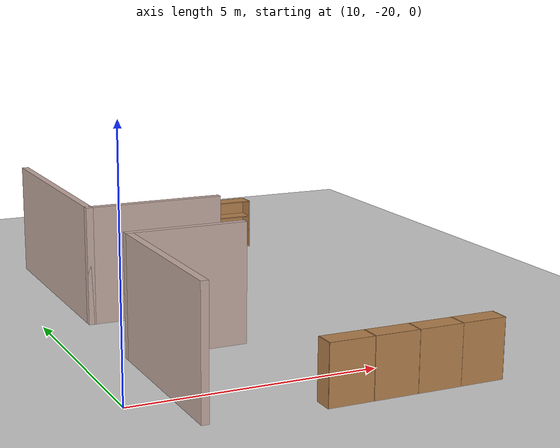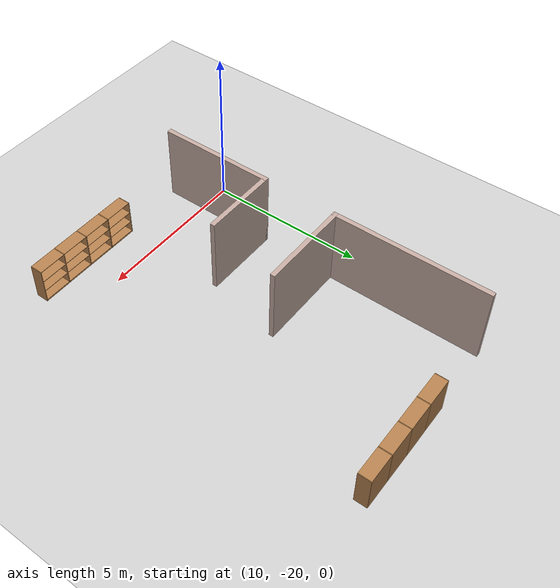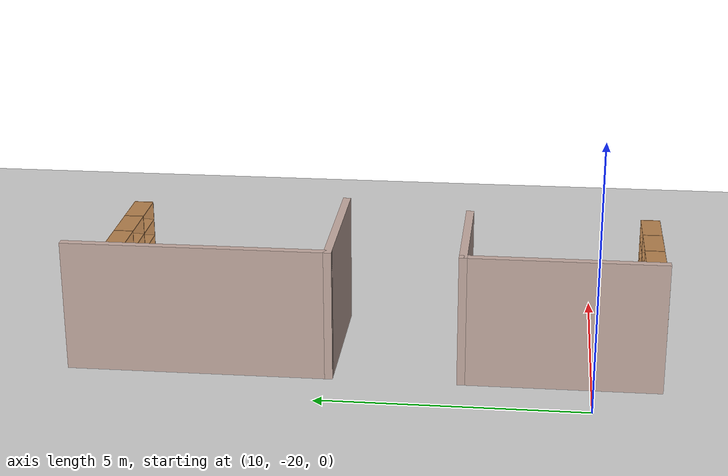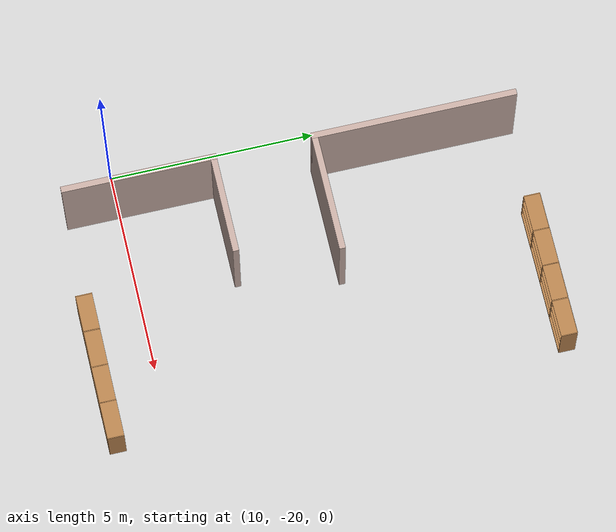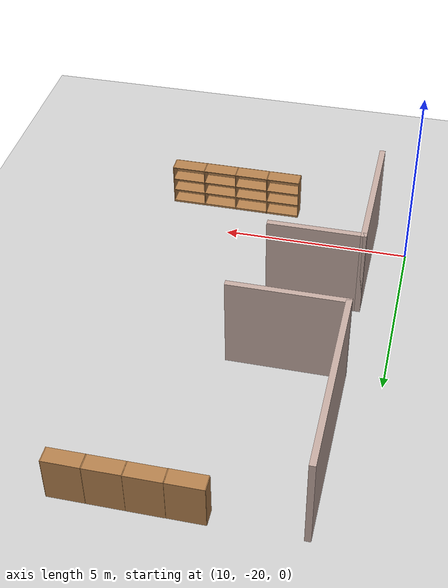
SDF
<sdf version="1.6">
 <world name="default">
  <model name="ground_plane">
   <static>1</static>
   <link name="link">
    <collision name="collision">
     <geometry><plane><normal>0 0 1</normal><size>100 100</size></plane></geometry>
     <surface><friction><ode><mu>100</mu><mu2>50</mu2></ode></friction></surface>
    </collision>
    <visual name="visual">
     <cast_shadows>0</cast_shadows>
     <geometry><plane><normal>0 0 1</normal><size>100 100</size></plane></geometry>
     <material>
      <script><uri>file://media/materials/scripts/gazebo.material</uri><name>Gazebo/Grey</name></script>
     </material>
    </visual>
   </link>
  </model>
  <model name="floor">
   <link name="Wall_120">
    <pose>9.72814 -11.4737 0 0 -0 1.5708</pose>
    <visual name="Wall_120_Visual">
     <pose>0 0 1.25 0 -0 0</pose>
     <geometry><box><size>5 0.15 2.5</size></box></geometry>
     <material>
      <script><uri>file://media/materials/scripts/gazebo.material</uri><name>Gazebo/Grey</name></script>
      <ambient>0.760784 0.662745 0.627451 1</ambient>
     </material>
     <meta><layer>0</layer></meta>
    </visual>
    <collision name="Wall_120_Collision">
     <pose>0 0 1.25 0 -0 0</pose>
     <geometry><box><size>5 0.15 2.5</size></box></geometry>
     <surface>
      <friction>
       <ode><mu>1</mu><mu2>1</mu2><fdir1>0 0 0</fdir1><slip1>0</slip1><slip2>0</slip2></ode>
       <torsional>
        <coefficient>1</coefficient>
        <patch_radius>0</patch_radius>
        <surface_radius>0</surface_radius>
        <use_patch_radius>1</use_patch_radius>
        <ode><slip>0</slip></ode>
       </torsional>
      </friction>
      <bounce><restitution_coefficient>0</restitution_coefficient><threshold>1e+06</threshold></bounce>
      <contact>
       <collide_without_contact>0</collide_without_contact>
       <collide_without_contact_bitmask>1</collide_without_contact_bitmask>
       <collide_bitmask>1</collide_bitmask>
       <ode>
        <soft_cfm>0</soft_cfm>
        <soft_erp>0.2</soft_erp>
        <kp>1e+13</kp>
        <kd>1</kd>
        <max_vel>0.01</max_vel>
        <min_depth>0</min_depth>
       </ode>
       <bullet>
        <split_impulse>1</split_impulse>
        <split_impulse_penetration_threshold>-0.01</split_impulse_penetration_threshold>
        <soft_cfm>0</soft_cfm>
        <soft_erp>0.2</soft_erp>
        <kp>1e+13</kp>
        <kd>1</kd>
       </bullet>
      </contact>
     </surface>
    </collision>
   </link>
   <link name="Wall_122">
    <pose>11.1531 -13.8987 0 0 -0 0</pose>
    <visual name="Wall_122_Visual">
     <pose>0 0 1.25 0 -0 0</pose>
     <geometry><box><size>3 0.15 2.5</size></box></geometry>
     <material>
      <script><uri>file://media/materials/scripts/gazebo.material</uri><name>Gazebo/Grey</name></script>
      <ambient>0.760784 0.662745 0.627451 1</ambient>
     </material>
     <meta><layer>0</layer></meta>
    </visual>
    <collision name="Wall_122_Collision">
     <pose>0 0 1.25 0 -0 0</pose>
     <geometry><box><size>3 0.15 2.5</size></box></geometry>
     <surface>
      <friction>
       <ode><mu>1</mu><mu2>1</mu2><fdir1>0 0 0</fdir1><slip1>0</slip1><slip2>0</slip2></ode>
       <torsional>
        <coefficient>1</coefficient>
        <patch_radius>0</patch_radius>
        <surface_radius>0</surface_radius>
        <use_patch_radius>1</use_patch_radius>
        <ode><slip>0</slip></ode>
       </torsional>
      </friction>
      <bounce><restitution_coefficient>0</restitution_coefficient><threshold>1e+06</threshold></bounce>
      <contact>
       <collide_without_contact>0</collide_without_contact>
       <collide_without_contact_bitmask>1</collide_without_contact_bitmask>
       <collide_bitmask>1</collide_bitmask>
       <ode>
        <soft_cfm>0</soft_cfm>
        <soft_erp>0.2</soft_erp>
        <kp>1e+13</kp>
        <kd>1</kd>
        <max_vel>0.01</max_vel>
        <min_depth>0</min_depth>
       </ode>
       <bullet>
        <split_impulse>1</split_impulse>
        <split_impulse_penetration_threshold>-0.01</split_impulse_penetration_threshold>
        <soft_cfm>0</soft_cfm>
        <soft_erp>0.2</soft_erp>
        <kp>1e+13</kp>
        <kd>1</kd>
       </bullet>
      </contact>
     </surface>
    </collision>
   </link>
   <link name="Wall_130">
    <pose>9.72225 -18.1406 0 0 0 -1.5708</pose>
    <visual name="Wall_130_Visual">
     <pose>0 0 1.25 0 -0 0</pose>
     <geometry><box><size>3.75 0.15 2.5</size></box></geometry>
     <material>
      <script><uri>file://media/materials/scripts/gazebo.material</uri><name>Gazebo/Grey</name></script>
      <ambient>0.760784 0.662745 0.627451 1</ambient>
     </material>
     <meta><layer>0</layer></meta>
    </visual>
    <collision name="Wall_130_Collision">
     <pose>0 0 1.25 0 -0 0</pose>
     <geometry><box><size>3.75 0.15 2.5</size></box></geometry>
     <surface>
      <friction>
       <ode><mu>1</mu><mu2>1</mu2><fdir1>0 0 0</fdir1><slip1>0</slip1><slip2>0</slip2></ode>
       <torsional>
        <coefficient>1</coefficient>
        <patch_radius>0</patch_radius>
        <surface_radius>0</surface_radius>
        <use_patch_radius>1</use_patch_radius>
        <ode><slip>0</slip></ode>
       </torsional>
      </friction>
      <bounce><restitution_coefficient>0</restitution_coefficient><threshold>1e+06</threshold></bounce>
      <contact>
       <collide_without_contact>0</collide_without_contact>
       <collide_without_contact_bitmask>1</collide_without_contact_bitmask>
       <collide_bitmask>1</collide_bitmask>
       <ode>
        <soft_cfm>0</soft_cfm>
        <soft_erp>0.2</soft_erp>
        <kp>1e+13</kp>
        <kd>1</kd>
        <max_vel>0.01</max_vel>
        <min_depth>0</min_depth>
       </ode>
       <bullet>
        <split_impulse>1</split_impulse>
        <split_impulse_penetration_threshold>-0.01</split_impulse_penetration_threshold>
        <soft_cfm>0</soft_cfm>
        <soft_erp>0.2</soft_erp>
        <kp>1e+13</kp>
        <kd>1</kd>
       </bullet>
      </contact>
     </surface>
    </collision>
   </link>
   <link name="Wall_132">
    <pose>10.8972 -16.3406 0 0 -0 0</pose>
    <visual name="Wall_132_Visual">
     <pose>0 0 1.25 0 -0 0</pose>
     <geometry><box><size>2.5 0.15 2.5</size></box></geometry>
     <material>
      <script><uri>file://media/materials/scripts/gazebo.material</uri><name>Gazebo/Grey</name></script>
      <ambient>0.760784 0.662745 0.627451 1</ambient>
     </material>
     <meta><layer>0</layer></meta>
    </visual>
    <collision name="Wall_132_Collision">
     <pose>0 0 1.25 0 -0 0</pose>
     <geometry><box><size>2.5 0.15 2.5</size></box></geometry>
     <surface>
      <friction>
       <ode><mu>1</mu><mu2>1</mu2><fdir1>0 0 0</fdir1><slip1>0</slip1><slip2>0</slip2></ode>
       <torsional>
        <coefficient>1</coefficient>
        <patch_radius>0</patch_radius>
        <surface_radius>0</surface_radius>
        <use_patch_radius>1</use_patch_radius>
        <ode><slip>0</slip></ode>
       </torsional>
      </friction>
      <bounce><restitution_coefficient>0</restitution_coefficient><threshold>1e+06</threshold></bounce>
      <contact>
       <collide_without_contact>0</collide_without_contact>
       <collide_without_contact_bitmask>1</collide_without_contact_bitmask>
       <collide_bitmask>1</collide_bitmask>
       <ode>
        <soft_cfm>0</soft_cfm>
        <soft_erp>0.2</soft_erp>
        <kp>1e+13</kp>
        <kd>1</kd>
        <max_vel>0.01</max_vel>
        <min_depth>0</min_depth>
       </ode>
       <bullet>
        <split_impulse>1</split_impulse>
        <split_impulse_penetration_threshold>-0.01</split_impulse_penetration_threshold>
        <soft_cfm>0</soft_cfm>
        <soft_erp>0.2</soft_erp>
        <kp>1e+13</kp>
        <kd>1</kd>
       </bullet>
      </contact>
     </surface>
    </collision>
   </link>
   <static>1</static>
   <pose>1.26361 -1.27025 0 0 -0 0</pose>
  </model>
  <model name="Bookshelf-4_clone_15">
   <model name="bookshelf">
    <static>1</static>
    <link name="link">
     <inertial><mass>1</mass></inertial>
     <collision name="back">
      <pose>0 0.005 0.6 0 -0 0</pose>
      <geometry><box><size>0.9 0.01 1.2</size></box></geometry>
     </collision>
     <visual name="visual1">
      <pose>0 0.005 0.6 0 -0 0</pose>
      <geometry><box><size>0.9 0.01 1.2</size></box></geometry>
      <material>
       <script><uri>file://media/materials/scripts/gazebo.material</uri><name>Gazebo/Wood</name></script>
      </material>
     </visual>
     <collision name="left_side">
      <pose>0.45 -0.195 0.6 0 -0 0</pose>
      <geometry><box><size>0.02 0.4 1.2</size></box></geometry>
     </collision>
     <visual name="visual2">
      <pose>0.45 -0.195 0.6 0 -0 0</pose>
      <geometry><box><size>0.02 0.4 1.2</size></box></geometry>
      <material>
       <script><uri>file://media/materials/scripts/gazebo.material</uri><name>Gazebo/Wood</name></script>
      </material>
     </visual>
     <collision name="right_side">
      <pose>-0.45 -0.195 0.6 0 -0 0</pose>
      <geometry><box><size>0.02 0.4 1.2</size></box></geometry>
     </collision>
     <visual name="visual3">
      <pose>-0.45 -0.195 0.6 0 -0 0</pose>
      <geometry><box><size>0.02 0.4 1.2</size></box></geometry>
      <material>
       <script><uri>file://media/materials/scripts/gazebo.material</uri><name>Gazebo/Wood</name></script>
      </material>
     </visual>
     <collision name="bottom">
      <pose>0 -0.195 0.03 0 -0 0</pose>
      <geometry><box><size>0.88 0.4 0.06</size></box></geometry>
     </collision>
     <visual name="visual4">
      <pose>0 -0.195 0.03 0 -0 0</pose>
      <geometry><box><size>0.88 0.4 0.06</size></box></geometry>
      <material>
       <script><uri>file://media/materials/scripts/gazebo.material</uri><name>Gazebo/Wood</name></script>
      </material>
     </visual>
     <collision name="top">
      <pose>0 -0.195 1.19 0 -0 0</pose>
      <geometry><box><size>0.88 0.4 0.02</size></box></geometry>
     </collision>
     <visual name="visual5">
      <pose>0 -0.195 1.19 0 -0 0</pose>
      <geometry><box><size>0.88 0.4 0.02</size></box></geometry>
      <material>
       <script><uri>file://media/materials/scripts/gazebo.material</uri><name>Gazebo/Wood</name></script>
      </material>
     </visual>
     <collision name="low_shelf">
      <pose>0 -0.195 0.43 0 -0 0</pose>
      <geometry><box><size>0.88 0.4 0.02</size></box></geometry>
     </collision>
     <visual name="visual6">
      <pose>0 -0.195 0.43 0 -0 0</pose>
      <geometry><box><size>0.88 0.4 0.02</size></box></geometry>
      <material>
       <script><uri>file://media/materials/scripts/gazebo.material</uri><name>Gazebo/Wood</name></script>
      </material>
     </visual>
     <collision name="high_shelf">
      <pose>0 -0.195 0.8 0 -0 0</pose>
      <geometry><box><size>0.88 0.4 0.02</size></box></geometry>
     </collision>
     <visual name="visual7">
      <pose>0 -0.195 0.8 0 -0 0</pose>
      <geometry><box><size>0.88 0.4 0.02</size></box></geometry>
      <material>
       <script><uri>file://media/materials/scripts/gazebo.material</uri><name>Gazebo/Wood</name></script>
      </material>
     </visual>
    </link>
    <pose>-1.35671 -0.002097 0 0 -0 0</pose>
   </model>
   <model name="bookshelf_0">
    <static>1</static>
    <link name="link">
     <inertial><mass>1</mass></inertial>
     <collision name="back">
      <pose>0 0.005 0.6 0 -0 0</pose>
      <geometry><box><size>0.9 0.01 1.2</size></box></geometry>
     </collision>
     <visual name="visual1">
      <pose>0 0.005 0.6 0 -0 0</pose>
      <geometry><box><size>0.9 0.01 1.2</size></box></geometry>
      <material>
       <script><uri>file://media/materials/scripts/gazebo.material</uri><name>Gazebo/Wood</name></script>
      </material>
     </visual>
     <collision name="left_side">
      <pose>0.45 -0.195 0.6 0 -0 0</pose>
      <geometry><box><size>0.02 0.4 1.2</size></box></geometry>
     </collision>
     <visual name="visual2">
      <pose>0.45 -0.195 0.6 0 -0 0</pose>
      <geometry><box><size>0.02 0.4 1.2</size></box></geometry>
      <material>
       <script><uri>file://media/materials/scripts/gazebo.material</uri><name>Gazebo/Wood</name></script>
      </material>
     </visual>
     <collision name="right_side">
      <pose>-0.45 -0.195 0.6 0 -0 0</pose>
      <geometry><box><size>0.02 0.4 1.2</size></box></geometry>
     </collision>
     <visual name="visual3">
      <pose>-0.45 -0.195 0.6 0 -0 0</pose>
      <geometry><box><size>0.02 0.4 1.2</size></box></geometry>
      <material>
       <script><uri>file://media/materials/scripts/gazebo.material</uri><name>Gazebo/Wood</name></script>
      </material>
     </visual>
     <collision name="bottom">
      <pose>0 -0.195 0.03 0 -0 0</pose>
      <geometry><box><size>0.88 0.4 0.06</size></box></geometry>
     </collision>
     <visual name="visual4">
      <pose>0 -0.195 0.03 0 -0 0</pose>
      <geometry><box><size>0.88 0.4 0.06</size></box></geometry>
      <material>
       <script><uri>file://media/materials/scripts/gazebo.material</uri><name>Gazebo/Wood</name></script>
      </material>
     </visual>
     <collision name="top">
      <pose>0 -0.195 1.19 0 -0 0</pose>
      <geometry><box><size>0.88 0.4 0.02</size></box></geometry>
     </collision>
     <visual name="visual5">
      <pose>0 -0.195 1.19 0 -0 0</pose>
      <geometry><box><size>0.88 0.4 0.02</size></box></geometry>
      <material>
       <script><uri>file://media/materials/scripts/gazebo.material</uri><name>Gazebo/Wood</name></script>
      </material>
     </visual>
     <collision name="low_shelf">
      <pose>0 -0.195 0.43 0 -0 0</pose>
      <geometry><box><size>0.88 0.4 0.02</size></box></geometry>
     </collision>
     <visual name="visual6">
      <pose>0 -0.195 0.43 0 -0 0</pose>
      <geometry><box><size>0.88 0.4 0.02</size></box></geometry>
      <material>
       <script><uri>file://media/materials/scripts/gazebo.material</uri><name>Gazebo/Wood</name></script>
      </material>
     </visual>
     <collision name="high_shelf">
      <pose>0 -0.195 0.8 0 -0 0</pose>
      <geometry><box><size>0.88 0.4 0.02</size></box></geometry>
     </collision>
     <visual name="visual7">
      <pose>0 -0.195 0.8 0 -0 0</pose>
      <geometry><box><size>0.88 0.4 0.02</size></box></geometry>
      <material>
       <script><uri>file://media/materials/scripts/gazebo.material</uri><name>Gazebo/Wood</name></script>
      </material>
     </visual>
    </link>
    <pose>-0.452974 0.001386 0 0 -0 0</pose>
   </model>
   <model name="bookshelf_1">
    <static>1</static>
    <link name="link">
     <inertial><mass>1</mass></inertial>
     <collision name="back">
      <pose>0 0.005 0.6 0 -0 0</pose>
      <geometry><box><size>0.9 0.01 1.2</size></box></geometry>
     </collision>
     <visual name="visual1">
      <pose>0 0.005 0.6 0 -0 0</pose>
      <geometry><box><size>0.9 0.01 1.2</size></box></geometry>
      <material>
       <script><uri>file://media/materials/scripts/gazebo.material</uri><name>Gazebo/Wood</name></script>
      </material>
     </visual>
     <collision name="left_side">
      <pose>0.45 -0.195 0.6 0 -0 0</pose>
      <geometry><box><size>0.02 0.4 1.2</size></box></geometry>
     </collision>
     <visual name="visual2">
      <pose>0.45 -0.195 0.6 0 -0 0</pose>
      <geometry><box><size>0.02 0.4 1.2</size></box></geometry>
      <material>
       <script><uri>file://media/materials/scripts/gazebo.material</uri><name>Gazebo/Wood</name></script>
      </material>
     </visual>
     <collision name="right_side">
      <pose>-0.45 -0.195 0.6 0 -0 0</pose>
      <geometry><box><size>0.02 0.4 1.2</size></box></geometry>
     </collision>
     <visual name="visual3">
      <pose>-0.45 -0.195 0.6 0 -0 0</pose>
      <geometry><box><size>0.02 0.4 1.2</size></box></geometry>
      <material>
       <script><uri>file://media/materials/scripts/gazebo.material</uri><name>Gazebo/Wood</name></script>
      </material>
     </visual>
     <collision name="bottom">
      <pose>0 -0.195 0.03 0 -0 0</pose>
      <geometry><box><size>0.88 0.4 0.06</size></box></geometry>
     </collision>
     <visual name="visual4">
      <pose>0 -0.195 0.03 0 -0 0</pose>
      <geometry><box><size>0.88 0.4 0.06</size></box></geometry>
      <material>
       <script><uri>file://media/materials/scripts/gazebo.material</uri><name>Gazebo/Wood</name></script>
      </material>
     </visual>
     <collision name="top">
      <pose>0 -0.195 1.19 0 -0 0</pose>
      <geometry><box><size>0.88 0.4 0.02</size></box></geometry>
     </collision>
     <visual name="visual5">
      <pose>0 -0.195 1.19 0 -0 0</pose>
      <geometry><box><size>0.88 0.4 0.02</size></box></geometry>
      <material>
       <script><uri>file://media/materials/scripts/gazebo.material</uri><name>Gazebo/Wood</name></script>
      </material>
     </visual>
     <collision name="low_shelf">
      <pose>0 -0.195 0.43 0 -0 0</pose>
      <geometry><box><size>0.88 0.4 0.02</size></box></geometry>
     </collision>
     <visual name="visual6">
      <pose>0 -0.195 0.43 0 -0 0</pose>
      <geometry><box><size>0.88 0.4 0.02</size></box></geometry>
      <material>
       <script><uri>file://media/materials/scripts/gazebo.material</uri><name>Gazebo/Wood</name></script>
      </material>
     </visual>
     <collision name="high_shelf">
      <pose>0 -0.195 0.8 0 -0 0</pose>
      <geometry><box><size>0.88 0.4 0.02</size></box></geometry>
     </collision>
     <visual name="visual7">
      <pose>0 -0.195 0.8 0 -0 0</pose>
      <geometry><box><size>0.88 0.4 0.02</size></box></geometry>
      <material>
       <script><uri>file://media/materials/scripts/gazebo.material</uri><name>Gazebo/Wood</name></script>
      </material>
     </visual>
    </link>
    <pose>0.450456 0.000733 0 0 -0 0</pose>
   </model>
   <model name="bookshelf_2">
    <static>1</static>
    <link name="link">
     <inertial><mass>1</mass></inertial>
     <collision name="back">
      <pose>0 0.005 0.6 0 -0 0</pose>
      <geometry><box><size>0.9 0.01 1.2</size></box></geometry>
     </collision>
     <visual name="visual1">
      <pose>0 0.005 0.6 0 -0 0</pose>
      <geometry><box><size>0.9 0.01 1.2</size></box></geometry>
      <material>
       <script><uri>file://media/materials/scripts/gazebo.material</uri><name>Gazebo/Wood</name></script>
      </material>
     </visual>
     <collision name="left_side">
      <pose>0.45 -0.195 0.6 0 -0 0</pose>
      <geometry><box><size>0.02 0.4 1.2</size></box></geometry>
     </collision>
     <visual name="visual2">
      <pose>0.45 -0.195 0.6 0 -0 0</pose>
      <geometry><box><size>0.02 0.4 1.2</size></box></geometry>
      <material>
       <script><uri>file://media/materials/scripts/gazebo.material</uri><name>Gazebo/Wood</name></script>
      </material>
     </visual>
     <collision name="right_side">
      <pose>-0.45 -0.195 0.6 0 -0 0</pose>
      <geometry><box><size>0.02 0.4 1.2</size></box></geometry>
     </collision>
     <visual name="visual3">
      <pose>-0.45 -0.195 0.6 0 -0 0</pose>
      <geometry><box><size>0.02 0.4 1.2</size></box></geometry>
      <material>
       <script><uri>file://media/materials/scripts/gazebo.material</uri><name>Gazebo/Wood</name></script>
      </material>
     </visual>
     <collision name="bottom">
      <pose>0 -0.195 0.03 0 -0 0</pose>
      <geometry><box><size>0.88 0.4 0.06</size></box></geometry>
     </collision>
     <visual name="visual4">
      <pose>0 -0.195 0.03 0 -0 0</pose>
      <geometry><box><size>0.88 0.4 0.06</size></box></geometry>
      <material>
       <script><uri>file://media/materials/scripts/gazebo.material</uri><name>Gazebo/Wood</name></script>
      </material>
     </visual>
     <collision name="top">
      <pose>0 -0.195 1.19 0 -0 0</pose>
      <geometry><box><size>0.88 0.4 0.02</size></box></geometry>
     </collision>
     <visual name="visual5">
      <pose>0 -0.195 1.19 0 -0 0</pose>
      <geometry><box><size>0.88 0.4 0.02</size></box></geometry>
      <material>
       <script><uri>file://media/materials/scripts/gazebo.material</uri><name>Gazebo/Wood</name></script>
      </material>
     </visual>
     <collision name="low_shelf">
      <pose>0 -0.195 0.43 0 -0 0</pose>
      <geometry><box><size>0.88 0.4 0.02</size></box></geometry>
     </collision>
     <visual name="visual6">
      <pose>0 -0.195 0.43 0 -0 0</pose>
      <geometry><box><size>0.88 0.4 0.02</size></box></geometry>
      <material>
       <script><uri>file://media/materials/scripts/gazebo.material</uri><name>Gazebo/Wood</name></script>
      </material>
     </visual>
     <collision name="high_shelf">
      <pose>0 -0.195 0.8 0 -0 0</pose>
      <geometry><box><size>0.88 0.4 0.02</size></box></geometry>
     </collision>
     <visual name="visual7">
      <pose>0 -0.195 0.8 0 -0 0</pose>
      <geometry><box><size>0.88 0.4 0.02</size></box></geometry>
      <material>
       <script><uri>file://media/materials/scripts/gazebo.material</uri><name>Gazebo/Wood</name></script>
      </material>
     </visual>
    </link>
    <pose>1.35922 -1.7e-05 0 0 -0 0</pose>
   </model>
   <static>0</static>
   <pose>14.9722 -10.1573 0.041819 0 -0 0</pose>
  </model>
  <model name="Bookshelf-4_clone_15_clone">
   <model name="bookshelf">
    <static>1</static>
    <link name="link">
     <inertial><mass>1</mass></inertial>
     <collision name="back">
      <pose>0 0.005 0.6 0 -0 0</pose>
      <geometry><box><size>0.9 0.01 1.2</size></box></geometry>
     </collision>
     <visual name="visual1">
      <pose>0 0.005 0.6 0 -0 0</pose>
      <geometry><box><size>0.9 0.01 1.2</size></box></geometry>
      <material>
       <script><uri>file://media/materials/scripts/gazebo.material</uri><name>Gazebo/Wood</name></script>
      </material>
     </visual>
     <collision name="left_side">
      <pose>0.45 -0.195 0.6 0 -0 0</pose>
      <geometry><box><size>0.02 0.4 1.2</size></box></geometry>
     </collision>
     <visual name="visual2">
      <pose>0.45 -0.195 0.6 0 -0 0</pose>
      <geometry><box><size>0.02 0.4 1.2</size></box></geometry>
      <material>
       <script><uri>file://media/materials/scripts/gazebo.material</uri><name>Gazebo/Wood</name></script>
      </material>
     </visual>
     <collision name="right_side">
      <pose>-0.45 -0.195 0.6 0 -0 0</pose>
      <geometry><box><size>0.02 0.4 1.2</size></box></geometry>
     </collision>
     <visual name="visual3">
      <pose>-0.45 -0.195 0.6 0 -0 0</pose>
      <geometry><box><size>0.02 0.4 1.2</size></box></geometry>
      <material>
       <script><uri>file://media/materials/scripts/gazebo.material</uri><name>Gazebo/Wood</name></script>
      </material>
     </visual>
     <collision name="bottom">
      <pose>0 -0.195 0.03 0 -0 0</pose>
      <geometry><box><size>0.88 0.4 0.06</size></box></geometry>
     </collision>
     <visual name="visual4">
      <pose>0 -0.195 0.03 0 -0 0</pose>
      <geometry><box><size>0.88 0.4 0.06</size></box></geometry>
      <material>
       <script><uri>file://media/materials/scripts/gazebo.material</uri><name>Gazebo/Wood</name></script>
      </material>
     </visual>
     <collision name="top">
      <pose>0 -0.195 1.19 0 -0 0</pose>
      <geometry><box><size>0.88 0.4 0.02</size></box></geometry>
     </collision>
     <visual name="visual5">
      <pose>0 -0.195 1.19 0 -0 0</pose>
      <geometry><box><size>0.88 0.4 0.02</size></box></geometry>
      <material>
       <script><uri>file://media/materials/scripts/gazebo.material</uri><name>Gazebo/Wood</name></script>
      </material>
     </visual>
     <collision name="low_shelf">
      <pose>0 -0.195 0.43 0 -0 0</pose>
      <geometry><box><size>0.88 0.4 0.02</size></box></geometry>
     </collision>
     <visual name="visual6">
      <pose>0 -0.195 0.43 0 -0 0</pose>
      <geometry><box><size>0.88 0.4 0.02</size></box></geometry>
      <material>
       <script><uri>file://media/materials/scripts/gazebo.material</uri><name>Gazebo/Wood</name></script>
      </material>
     </visual>
     <collision name="high_shelf">
      <pose>0 -0.195 0.8 0 -0 0</pose>
      <geometry><box><size>0.88 0.4 0.02</size></box></geometry>
     </collision>
     <visual name="visual7">
      <pose>0 -0.195 0.8 0 -0 0</pose>
      <geometry><box><size>0.88 0.4 0.02</size></box></geometry>
      <material>
       <script><uri>file://media/materials/scripts/gazebo.material</uri><name>Gazebo/Wood</name></script>
      </material>
     </visual>
    </link>
    <pose>-1.35671 -0.002097 0 0 -0 0</pose>
   </model>
   <model name="bookshelf_0">
    <static>1</static>
    <link name="link">
     <inertial><mass>1</mass></inertial>
     <collision name="back">
      <pose>0 0.005 0.6 0 -0 0</pose>
      <geometry><box><size>0.9 0.01 1.2</size></box></geometry>
     </collision>
     <visual name="visual1">
      <pose>0 0.005 0.6 0 -0 0</pose>
      <geometry><box><size>0.9 0.01 1.2</size></box></geometry>
      <material>
       <script><uri>file://media/materials/scripts/gazebo.material</uri><name>Gazebo/Wood</name></script>
      </material>
     </visual>
     <collision name="left_side">
      <pose>0.45 -0.195 0.6 0 -0 0</pose>
      <geometry><box><size>0.02 0.4 1.2</size></box></geometry>
     </collision>
     <visual name="visual2">
      <pose>0.45 -0.195 0.6 0 -0 0</pose>
      <geometry><box><size>0.02 0.4 1.2</size></box></geometry>
      <material>
       <script><uri>file://media/materials/scripts/gazebo.material</uri><name>Gazebo/Wood</name></script>
      </material>
     </visual>
     <collision name="right_side">
      <pose>-0.45 -0.195 0.6 0 -0 0</pose>
      <geometry><box><size>0.02 0.4 1.2</size></box></geometry>
     </collision>
     <visual name="visual3">
      <pose>-0.45 -0.195 0.6 0 -0 0</pose>
      <geometry><box><size>0.02 0.4 1.2</size></box></geometry>
      <material>
       <script><uri>file://media/materials/scripts/gazebo.material</uri><name>Gazebo/Wood</name></script>
      </material>
     </visual>
     <collision name="bottom">
      <pose>0 -0.195 0.03 0 -0 0</pose>
      <geometry><box><size>0.88 0.4 0.06</size></box></geometry>
     </collision>
     <visual name="visual4">
      <pose>0 -0.195 0.03 0 -0 0</pose>
      <geometry><box><size>0.88 0.4 0.06</size></box></geometry>
      <material>
       <script><uri>file://media/materials/scripts/gazebo.material</uri><name>Gazebo/Wood</name></script>
      </material>
     </visual>
     <collision name="top">
      <pose>0 -0.195 1.19 0 -0 0</pose>
      <geometry><box><size>0.88 0.4 0.02</size></box></geometry>
     </collision>
     <visual name="visual5">
      <pose>0 -0.195 1.19 0 -0 0</pose>
      <geometry><box><size>0.88 0.4 0.02</size></box></geometry>
      <material>
       <script><uri>file://media/materials/scripts/gazebo.material</uri><name>Gazebo/Wood</name></script>
      </material>
     </visual>
     <collision name="low_shelf">
      <pose>0 -0.195 0.43 0 -0 0</pose>
      <geometry><box><size>0.88 0.4 0.02</size></box></geometry>
     </collision>
     <visual name="visual6">
      <pose>0 -0.195 0.43 0 -0 0</pose>
      <geometry><box><size>0.88 0.4 0.02</size></box></geometry>
      <material>
       <script><uri>file://media/materials/scripts/gazebo.material</uri><name>Gazebo/Wood</name></script>
      </material>
     </visual>
     <collision name="high_shelf">
      <pose>0 -0.195 0.8 0 -0 0</pose>
      <geometry><box><size>0.88 0.4 0.02</size></box></geometry>
     </collision>
     <visual name="visual7">
      <pose>0 -0.195 0.8 0 -0 0</pose>
      <geometry><box><size>0.88 0.4 0.02</size></box></geometry>
      <material>
       <script><uri>file://media/materials/scripts/gazebo.material</uri><name>Gazebo/Wood</name></script>
      </material>
     </visual>
    </link>
    <pose>-0.452974 0.001386 0 0 -0 0</pose>
   </model>
   <model name="bookshelf_1">
    <static>1</static>
    <link name="link">
     <inertial><mass>1</mass></inertial>
     <collision name="back">
      <pose>0 0.005 0.6 0 -0 0</pose>
      <geometry><box><size>0.9 0.01 1.2</size></box></geometry>
     </collision>
     <visual name="visual1">
      <pose>0 0.005 0.6 0 -0 0</pose>
      <geometry><box><size>0.9 0.01 1.2</size></box></geometry>
      <material>
       <script><uri>file://media/materials/scripts/gazebo.material</uri><name>Gazebo/Wood</name></script>
      </material>
     </visual>
     <collision name="left_side">
      <pose>0.45 -0.195 0.6 0 -0 0</pose>
      <geometry><box><size>0.02 0.4 1.2</size></box></geometry>
     </collision>
     <visual name="visual2">
      <pose>0.45 -0.195 0.6 0 -0 0</pose>
      <geometry><box><size>0.02 0.4 1.2</size></box></geometry>
      <material>
       <script><uri>file://media/materials/scripts/gazebo.material</uri><name>Gazebo/Wood</name></script>
      </material>
     </visual>
     <collision name="right_side">
      <pose>-0.45 -0.195 0.6 0 -0 0</pose>
      <geometry><box><size>0.02 0.4 1.2</size></box></geometry>
     </collision>
     <visual name="visual3">
      <pose>-0.45 -0.195 0.6 0 -0 0</pose>
      <geometry><box><size>0.02 0.4 1.2</size></box></geometry>
      <material>
       <script><uri>file://media/materials/scripts/gazebo.material</uri><name>Gazebo/Wood</name></script>
      </material>
     </visual>
     <collision name="bottom">
      <pose>0 -0.195 0.03 0 -0 0</pose>
      <geometry><box><size>0.88 0.4 0.06</size></box></geometry>
     </collision>
     <visual name="visual4">
      <pose>0 -0.195 0.03 0 -0 0</pose>
      <geometry><box><size>0.88 0.4 0.06</size></box></geometry>
      <material>
       <script><uri>file://media/materials/scripts/gazebo.material</uri><name>Gazebo/Wood</name></script>
      </material>
     </visual>
     <collision name="top">
      <pose>0 -0.195 1.19 0 -0 0</pose>
      <geometry><box><size>0.88 0.4 0.02</size></box></geometry>
     </collision>
     <visual name="visual5">
      <pose>0 -0.195 1.19 0 -0 0</pose>
      <geometry><box><size>0.88 0.4 0.02</size></box></geometry>
      <material>
       <script><uri>file://media/materials/scripts/gazebo.material</uri><name>Gazebo/Wood</name></script>
      </material>
     </visual>
     <collision name="low_shelf">
      <pose>0 -0.195 0.43 0 -0 0</pose>
      <geometry><box><size>0.88 0.4 0.02</size></box></geometry>
     </collision>
     <visual name="visual6">
      <pose>0 -0.195 0.43 0 -0 0</pose>
      <geometry><box><size>0.88 0.4 0.02</size></box></geometry>
      <material>
       <script><uri>file://media/materials/scripts/gazebo.material</uri><name>Gazebo/Wood</name></script>
      </material>
     </visual>
     <collision name="high_shelf">
      <pose>0 -0.195 0.8 0 -0 0</pose>
      <geometry><box><size>0.88 0.4 0.02</size></box></geometry>
     </collision>
     <visual name="visual7">
      <pose>0 -0.195 0.8 0 -0 0</pose>
      <geometry><box><size>0.88 0.4 0.02</size></box></geometry>
      <material>
       <script><uri>file://media/materials/scripts/gazebo.material</uri><name>Gazebo/Wood</name></script>
      </material>
     </visual>
    </link>
    <pose>0.450456 0.000733 0 0 -0 0</pose>
   </model>
   <model name="bookshelf_2">
    <static>1</static>
    <link name="link">
     <inertial><mass>1</mass></inertial>
     <collision name="back">
      <pose>0 0.005 0.6 0 -0 0</pose>
      <geometry><box><size>0.9 0.01 1.2</size></box></geometry>
     </collision>
     <visual name="visual1">
      <pose>0 0.005 0.6 0 -0 0</pose>
      <geometry><box><size>0.9 0.01 1.2</size></box></geometry>
      <material>
       <script><uri>file://media/materials/scripts/gazebo.material</uri><name>Gazebo/Wood</name></script>
      </material>
     </visual>
     <collision name="left_side">
      <pose>0.45 -0.195 0.6 0 -0 0</pose>
      <geometry><box><size>0.02 0.4 1.2</size></box></geometry>
     </collision>
     <visual name="visual2">
      <pose>0.45 -0.195 0.6 0 -0 0</pose>
      <geometry><box><size>0.02 0.4 1.2</size></box></geometry>
      <material>
       <script><uri>file://media/materials/scripts/gazebo.material</uri><name>Gazebo/Wood</name></script>
      </material>
     </visual>
     <collision name="right_side">
      <pose>-0.45 -0.195 0.6 0 -0 0</pose>
      <geometry><box><size>0.02 0.4 1.2</size></box></geometry>
     </collision>
     <visual name="visual3">
      <pose>-0.45 -0.195 0.6 0 -0 0</pose>
      <geometry><box><size>0.02 0.4 1.2</size></box></geometry>
      <material>
       <script><uri>file://media/materials/scripts/gazebo.material</uri><name>Gazebo/Wood</name></script>
      </material>
     </visual>
     <collision name="bottom">
      <pose>0 -0.195 0.03 0 -0 0</pose>
      <geometry><box><size>0.88 0.4 0.06</size></box></geometry>
     </collision>
     <visual name="visual4">
      <pose>0 -0.195 0.03 0 -0 0</pose>
      <geometry><box><size>0.88 0.4 0.06</size></box></geometry>
      <material>
       <script><uri>file://media/materials/scripts/gazebo.material</uri><name>Gazebo/Wood</name></script>
      </material>
     </visual>
     <collision name="top">
      <pose>0 -0.195 1.19 0 -0 0</pose>
      <geometry><box><size>0.88 0.4 0.02</size></box></geometry>
     </collision>
     <visual name="visual5">
      <pose>0 -0.195 1.19 0 -0 0</pose>
      <geometry><box><size>0.88 0.4 0.02</size></box></geometry>
      <material>
       <script><uri>file://media/materials/scripts/gazebo.material</uri><name>Gazebo/Wood</name></script>
      </material>
     </visual>
     <collision name="low_shelf">
      <pose>0 -0.195 0.43 0 -0 0</pose>
      <geometry><box><size>0.88 0.4 0.02</size></box></geometry>
     </collision>
     <visual name="visual6">
      <pose>0 -0.195 0.43 0 -0 0</pose>
      <geometry><box><size>0.88 0.4 0.02</size></box></geometry>
      <material>
       <script><uri>file://media/materials/scripts/gazebo.material</uri><name>Gazebo/Wood</name></script>
      </material>
     </visual>
     <collision name="high_shelf">
      <pose>0 -0.195 0.8 0 -0 0</pose>
      <geometry><box><size>0.88 0.4 0.02</size></box></geometry>
     </collision>
     <visual name="visual7">
      <pose>0 -0.195 0.8 0 -0 0</pose>
      <geometry><box><size>0.88 0.4 0.02</size></box></geometry>
      <material>
       <script><uri>file://media/materials/scripts/gazebo.material</uri><name>Gazebo/Wood</name></script>
      </material>
     </visual>
    </link>
    <pose>1.35922 -1.7e-05 0 0 -0 0</pose>
   </model>
   <static>0</static>
   <pose>15.0133 -21.4749 0 0 -0 3.14159</pose>
  </model>
 </world>
</sdf>
